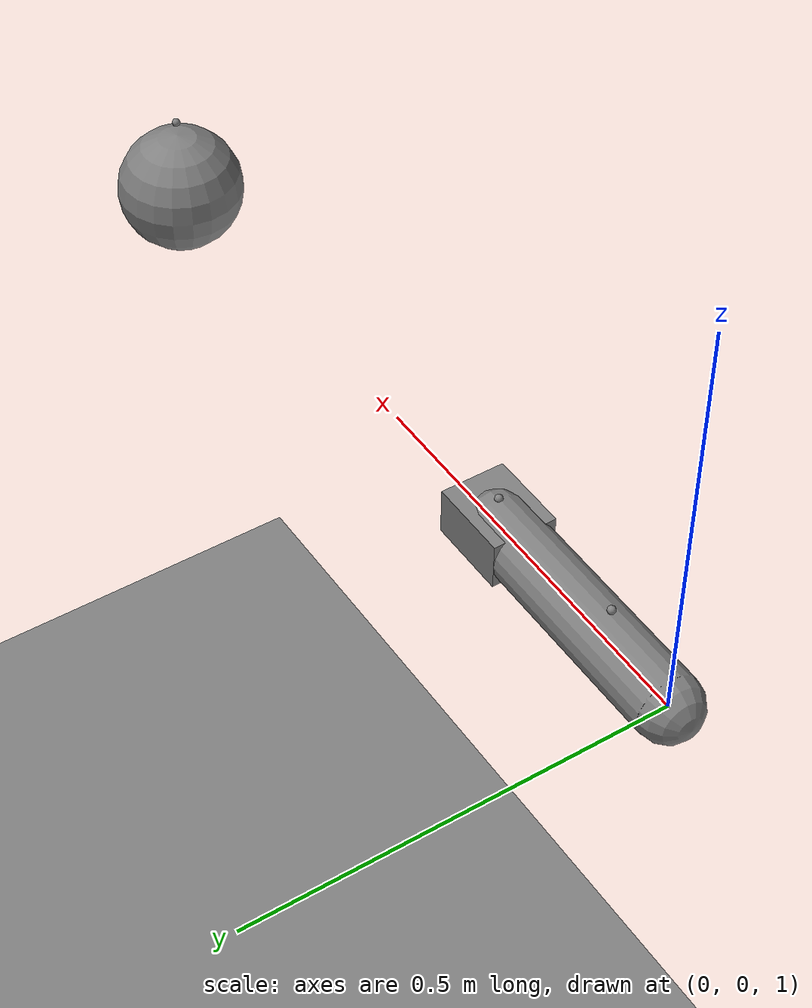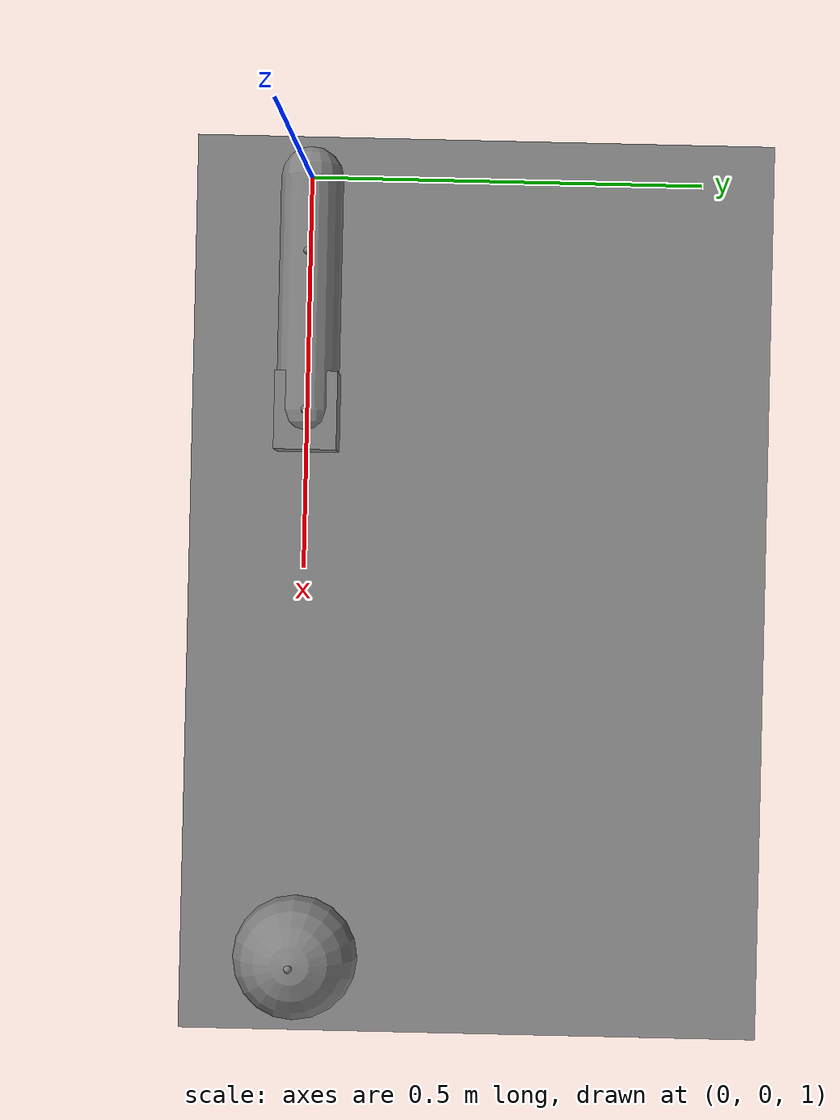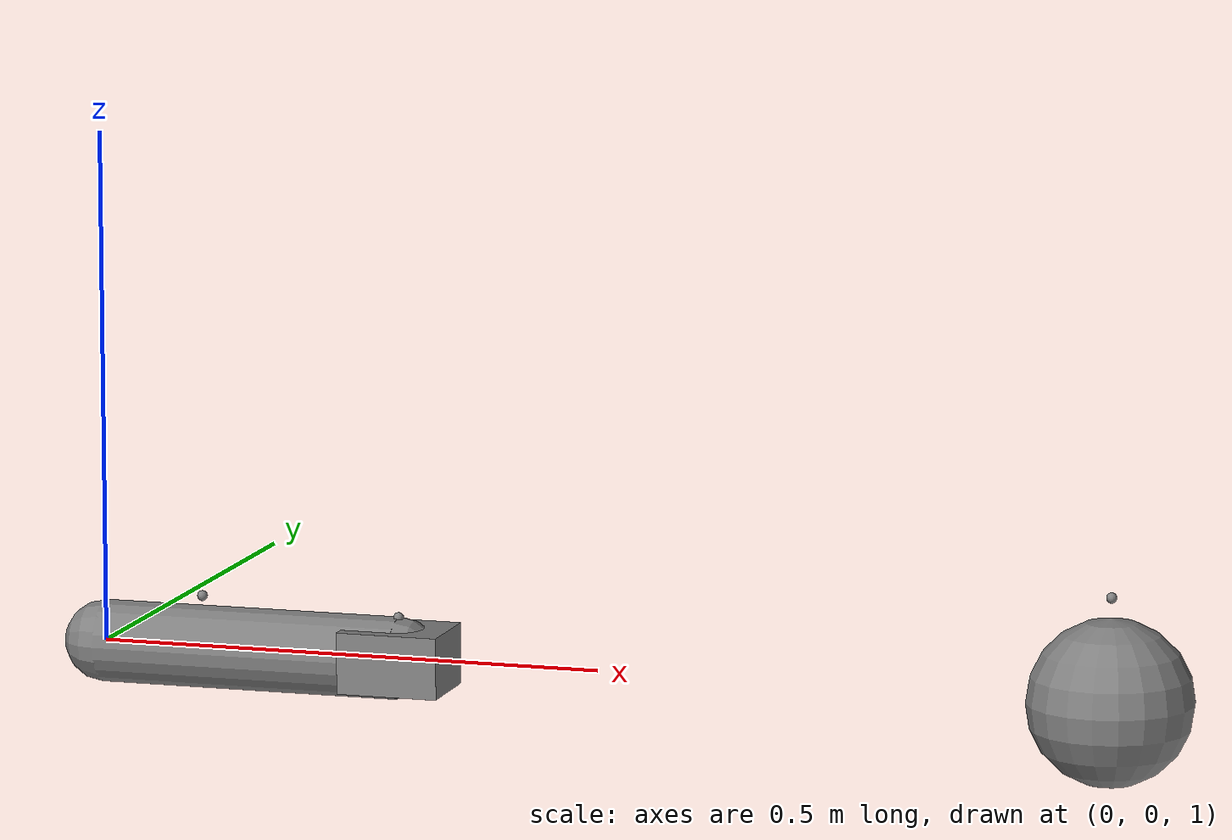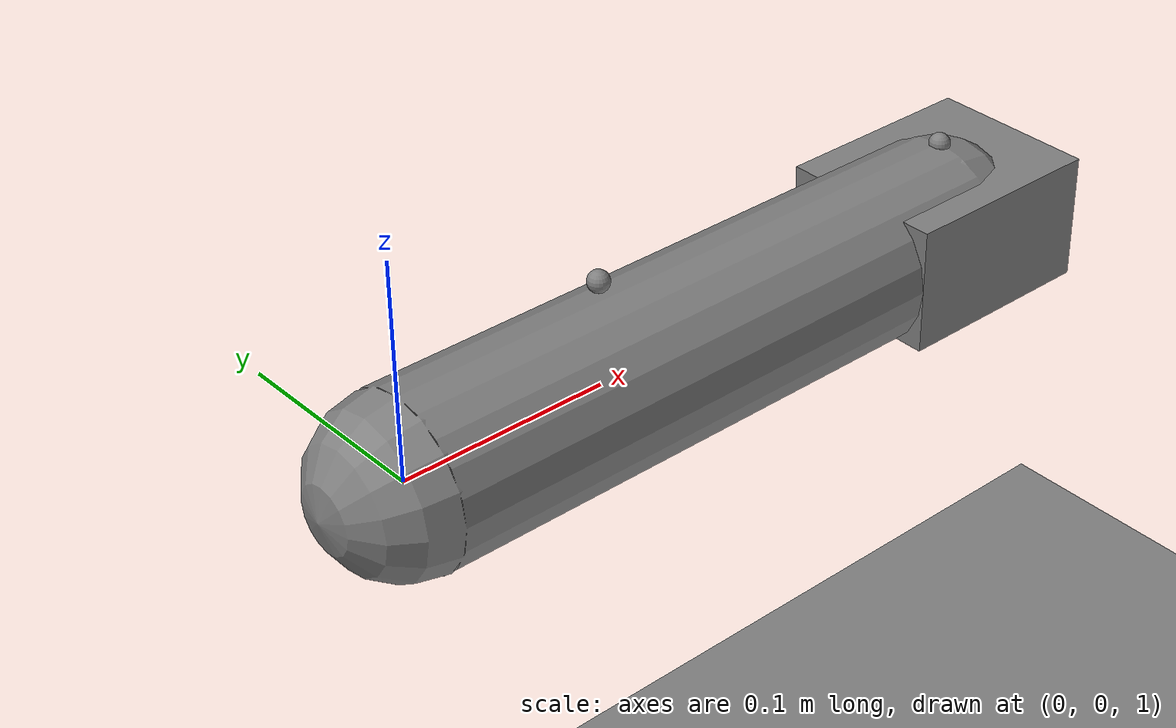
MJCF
<mujoco model="sensors_catalog">
  <compiler autolimits="true"/>
  <worldbody>
    <geom name="floor" type="plane" size="3 3 0.1"/>
    <body name="base" pos="0 0 1">
      <joint name="hinge1" type="hinge" axis="0 1 0" range="-60 60"/>
      <geom name="base_g" type="capsule" size="0.04" fromto="0 0 0 0.3 0 0"/>
      <site name="s_a" pos="0.1 0 0.05"/>
      <camera name="cam" pos="0 -0.5 0.2" mode="targetbody" target="ball"
              resolution="16 16"/>
      <body name="mid" pos="0.3 0 0">
        <joint name="slide1" type="slide" axis="1 0 0" range="-0.2 0.2"/>
        <geom name="mid_g" type="box" size="0.05 0.04 0.03"/>
        <site name="s_b" pos="0 0 0.04"/>
      </body>
    </body>
    <body name="ball" pos="1 0 1">
      <joint name="balljoint" type="ball" range="0 50"/>
      <geom name="ball_g" type="sphere" size="0.08"/>
      <site name="s_ball" pos="0 0 0.1"/>
    </body>
  </worldbody>
  <tendon>
    <fixed name="ten_fix" range="-0.3 0.3" limited="true">
      <joint joint="hinge1" coef="1"/>
      <joint joint="slide1" coef="-0.5"/>
    </fixed>
  </tendon>
  <actuator>
    <motor name="act_m" joint="hinge1" gear="2"/>
    <position name="act_p" joint="slide1" kp="10"/>
  </actuator>
  <sensor>
    <jointpos name="q_pos" joint="hinge1"/>
    <jointvel name="q_vel" joint="hinge1"/>
    <jointlimitpos name="q_lpos" joint="hinge1"/>
    <jointlimitvel name="q_lvel" joint="hinge1"/>
    <jointlimitfrc name="q_lfrc" joint="hinge1"/>
    <jointactuatorfrc name="q_afrc" joint="hinge1"/>
    <tendonpos name="t_pos" tendon="ten_fix"/>
    <tendonvel name="t_vel" tendon="ten_fix"/>
    <tendonlimitpos name="t_lpos" tendon="ten_fix"/>
    <tendonlimitvel name="t_lvel" tendon="ten_fix"/>
    <tendonlimitfrc name="t_lfrc" tendon="ten_fix"/>
    <tendonactuatorfrc name="t_afrc" tendon="ten_fix"/>
    <actuatorpos name="a_pos" actuator="act_m"/>
    <actuatorvel name="a_vel" actuator="act_m"/>
    <actuatorfrc name="a_frc" actuator="act_p"/>
    <ballquat name="b_quat" joint="balljoint"/>
    <ballangvel name="b_angvel" joint="balljoint"/>
    <magnetometer name="mag" site="s_a"/>
    <torque name="trq" site="s_a"/>
    <camprojection name="cproj" site="s_ball" camera="cam"/>
    <framepos name="f_pos" objtype="site" objname="s_b" reftype="body" refname="base"/>
    <framequat name="f_quat" objtype="body" objname="mid"/>
    <framexaxis name="f_x" objtype="geom" objname="mid_g"/>
    <frameyaxis name="f_y" objtype="camera" objname="cam"/>
    <framezaxis name="f_z" objtype="site" objname="s_a"/>
    <framelinvel name="f_lv" objtype="body" objname="ball"/>
    <frameangvel name="f_av" objtype="body" objname="ball"/>
    <framelinacc name="f_la" objtype="body" objname="mid"/>
    <frameangacc name="f_aa" objtype="body" objname="mid"/>
    <subtreecom name="st_com" body="base"/>
    <subtreelinvel name="st_lv" body="base"/>
    <subtreeangmom name="st_am" body="base"/>
    <e_potential name="e_pot"/>
    <e_kinetic name="e_kin"/>
    <clock name="clk"/>
    <distance name="d_gg" geom1="base_g" geom2="ball_g"/>
    <normal name="n_bb" body1="base" body2="ball"/>
    <fromto name="ft_gb" geom1="mid_g" body2="ball"/>
    <insidesite name="ins" site="s_ball" objtype="body" objname="ball"/>
  </sensor>
</mujoco>
